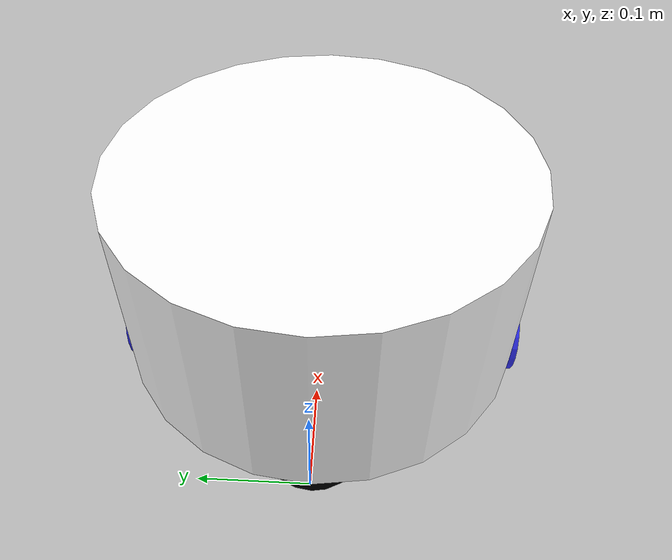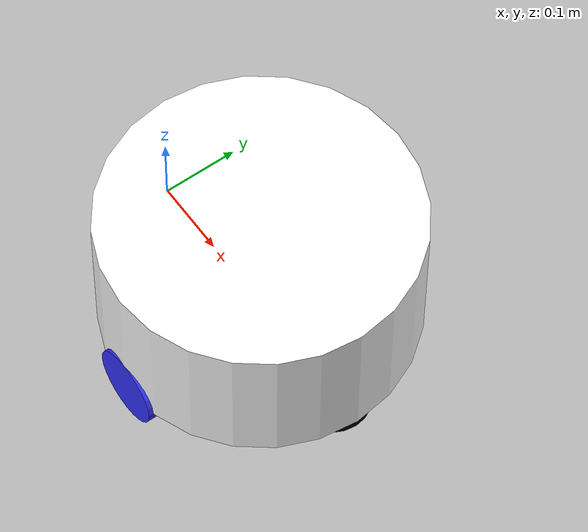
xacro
<?xml version="1.0"?>
<robot xmlns:xacro="http://www.ros.org/wiki/xacro"  name="robot">

    <xacro:arg name="use_ros2_control" default="true"/>

    <xacro:include filename="robot_core.xacro" />

    <xacro:if value="$(arg use_ros2_control)">
        <xacro:include filename="ros2_control.xacro" />
    </xacro:if>
    <xacro:unless value="$(arg use_ros2_control)">
        <xacro:include filename="gazebo_control.xacro" />
    </xacro:unless>

</robot>

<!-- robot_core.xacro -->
<robot xmlns:xacro="http://www.ros.org/wiki/xacro"  name="robot">

    <xacro:include filename="inertial_macros.xacro" />

    <material name="white">
        <color rgba="1 1 1 1"/>
    </material>

    <material name="orange">
        <color rgba="1 0.3 0.1 1"/>
    </material>

    <material name="blue">
        <color rgba="0.2 0.2 1 1"/>
    </material>

    <material name="black">
        <color rgba="0 0 0 1"/>
    </material>

    <!-- BASE LINK -->

    <link name="base_link">

    </link>

    <!-- CHASSIS LINK -->
    <joint name="chassis_joint" type="fixed">
        <parent link="base_link"/>
        <child link="chassis"/>
        <origin xyz="0.2 0 0"/>
    </joint>

    <link name="chassis">
        <visual>
            <origin xyz="0 0 0.1" rpy="0 0 0"/>
            <geometry>
                <cylinder length="0.2" radius="0.2" />
            </geometry>
            <material name="white"/>
        </visual>
        <collision>
            <origin xyz="0 0 0.1" rpy="0 0 0"/>
            <geometry>
                <cylinder length="0.2" radius="0.2" />
            </geometry>
        </collision>
        <xacro:inertial_cylinder mass="0.1" length="0.2" radius="0.2">
            <origin xyz="0 0 0" rpy="0 0 0"/>
        </xacro:inertial_cylinder>
    </link>

    <gazebo reference="chassis">
        <material>Gazebo/White</material>
    </gazebo>

    <!-- LEFT WHEEL -->

    <joint name="left_wheel_joint" type="continuous">
        <parent link="base_link"/>
        <child link="left_wheel"/>
        <origin xyz="0.2 0.175 0" rpy="-${pi/2} 0 0"/>
        <axis xyz="0 0 1"/>
    </joint>

    <link name="left_wheel">
        <visual>
            <geometry>
                <cylinder length="0.05" radius="0.05" />
            </geometry>
            <material name="blue"/>
        </visual>
        <collision>
            <geometry>
                <sphere radius="0.05" />
            </geometry>
        </collision>
        <xacro:inertial_cylinder mass="0.1" length="0.05" radius="0.05">
            <origin xyz="0 0 0" rpy="0 0 0"/>
        </xacro:inertial_cylinder>
    </link>

    <gazebo reference="left_wheel">
        <material>Gazebo/Blue</material>
    </gazebo>

    <!-- RIGHT WHEEL -->

    <joint name="right_wheel_joint" type="continuous">
        <parent link="base_link"/>
        <child link="right_wheel"/>
        <origin xyz="0.2 -0.175 0" rpy="${pi/2} 0 0"/>
        <axis xyz="0 0 -1"/>
    </joint>

    <link name="right_wheel">
        <visual>
            <geometry>
                <cylinder length="0.05" radius="0.05" />
            </geometry>
            <material name="blue"/>
        </visual>
        <collision>
            <geometry>
                <sphere radius="0.05" />
            </geometry>
        </collision>
        <xacro:inertial_cylinder mass="0.1" length="0.05" radius="0.05">
            <origin xyz="0 0 0" rpy="0 0 0"/>
        </xacro:inertial_cylinder>
    </link>

    <gazebo reference="right_wheel">
        <material>Gazebo/Blue</material>
    </gazebo>

    <!-- FRONT CASTER WHEEL -->

    <joint name="front_caster_wheel_joint" type="fixed">
        <parent link="chassis"/>
        <child link="front_caster_wheel"/>
        <origin xyz="0.15 0 0" rpy="0 0 0"/>
    </joint>

    <link name="front_caster_wheel">
        <visual>
            <geometry>
                <sphere radius="0.05" />
            </geometry>
            <material name="black"/>
        </visual>
        <collision>
            <geometry>
                <sphere radius="0.05" />
            </geometry>
        </collision>
        <xacro:inertial_sphere mass="0.1" radius="0.05">
            <origin xyz="0 0 0" rpy="0 0 0"/>
        </xacro:inertial_sphere>
    </link>

    <gazebo reference="front_caster_wheel">
        <material>Gazebo/Black</material>
    </gazebo>

    <gazebo reference="front_caster_wheel">
        <material>Gazebo/Black</material>
        <mu1 value="0.001"/>
        <mu2 value="0.001"/>
    </gazebo>

    <!-- BACK CASTER WHEEL -->

    <joint name="back_caster_wheel_joint" type="fixed">
        <parent link="chassis"/>
        <child link="back_caster_wheel"/>
        <origin xyz="-0.15 0 0" rpy="0 0 0"/>
    </joint>

    <link name="back_caster_wheel">
        <visual>
            <geometry>
                <sphere radius="0.05" />
            </geometry>
            <material name="black"/>
        </visual>
        <collision>
            <geometry>
                <sphere radius="0.05" />
            </geometry>
        </collision>
        <xacro:inertial_sphere mass="0.1" radius="0.05">
            <origin xyz="0 0 0" rpy="0 0 0"/>
        </xacro:inertial_sphere>
    </link>

    <gazebo reference="back_caster_wheel">
        <material>Gazebo/Black</material>
    </gazebo>

</robot>
